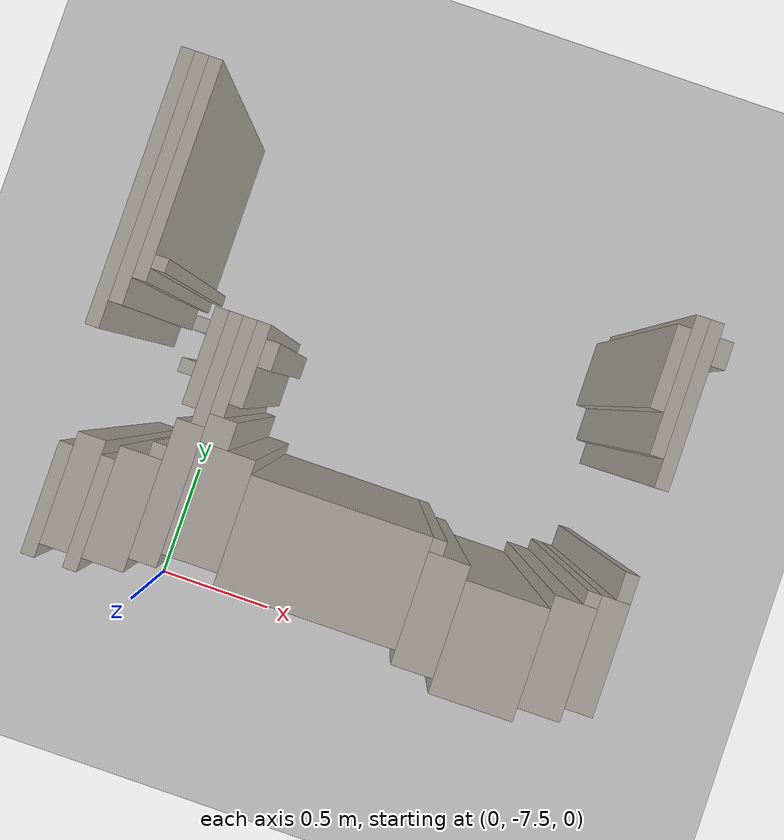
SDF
<sdf version="1.6">
 <world name="fr079_office">
  <include><uri>model://sun</uri></include>
  <include><uri>model://ground_plane</uri></include>
  <model name="fr079_office_walls">
   <static>true</static>
   <link name="w0014">
    <pose>-0.273 -7.106 0.500 0 0 0</pose>
    <collision name="c"><geometry><box><size>0.050 0.400 1.000</size></box></geometry></collision>
    <visual name="v">
     <geometry><box><size>0.050 0.400 1.000</size></box></geometry>
     <material><ambient>0.68 0.66 0.62 1</ambient><diffuse>0.68 0.66 0.62 1</diffuse></material>
    </visual>
   </link>
   <link name="w0015">
    <pose>-0.123 -7.106 0.500 0 0 0</pose>
    <collision name="c"><geometry><box><size>0.050 0.400 1.000</size></box></geometry></collision>
    <visual name="v">
     <geometry><box><size>0.050 0.400 1.000</size></box></geometry>
     <material><ambient>0.68 0.66 0.62 1</ambient><diffuse>0.68 0.66 0.62 1</diffuse></material>
    </visual>
   </link>
   <link name="w0016">
    <pose>1.302 -7.106 0.500 0 0 0</pose>
    <collision name="c"><geometry><box><size>0.300 0.400 1.000</size></box></geometry></collision>
    <visual name="v">
     <geometry><box><size>0.300 0.400 1.000</size></box></geometry>
     <material><ambient>0.68 0.66 0.62 1</ambient><diffuse>0.68 0.66 0.62 1</diffuse></material>
    </visual>
   </link>
   <link name="w0036">
    <pose>-0.198 -7.056 0.500 0 0 0</pose>
    <collision name="c"><geometry><box><size>0.100 0.400 1.000</size></box></geometry></collision>
    <visual name="v">
     <geometry><box><size>0.100 0.400 1.000</size></box></geometry>
     <material><ambient>0.68 0.66 0.62 1</ambient><diffuse>0.68 0.66 0.62 1</diffuse></material>
    </visual>
   </link>
   <link name="w0037">
    <pose>-0.023 -7.056 0.500 0 0 0</pose>
    <collision name="c"><geometry><box><size>0.150 0.400 1.000</size></box></geometry></collision>
    <visual name="v">
     <geometry><box><size>0.150 0.400 1.000</size></box></geometry>
     <material><ambient>0.68 0.66 0.62 1</ambient><diffuse>0.68 0.66 0.62 1</diffuse></material>
    </visual>
   </link>
   <link name="w0038">
    <pose>1.077 -7.056 0.500 0 0 0</pose>
    <collision name="c"><geometry><box><size>0.150 0.400 1.000</size></box></geometry></collision>
    <visual name="v">
     <geometry><box><size>0.150 0.400 1.000</size></box></geometry>
     <material><ambient>0.68 0.66 0.62 1</ambient><diffuse>0.68 0.66 0.62 1</diffuse></material>
    </visual>
   </link>
   <link name="w0039">
    <pose>1.527 -7.056 0.500 0 0 0</pose>
    <collision name="c"><geometry><box><size>0.150 0.400 1.000</size></box></geometry></collision>
    <visual name="v">
     <geometry><box><size>0.150 0.400 1.000</size></box></geometry>
     <material><ambient>0.68 0.66 0.62 1</ambient><diffuse>0.68 0.66 0.62 1</diffuse></material>
    </visual>
   </link>
   <link name="w0060">
    <pose>0.102 -6.956 0.500 0 0 0</pose>
    <collision name="c"><geometry><box><size>0.100 0.500 1.000</size></box></geometry></collision>
    <visual name="v">
     <geometry><box><size>0.100 0.500 1.000</size></box></geometry>
     <material><ambient>0.68 0.66 0.62 1</ambient><diffuse>0.68 0.66 0.62 1</diffuse></material>
    </visual>
   </link>
   <link name="w0061">
    <pose>0.677 -7.006 0.500 0 0 0</pose>
    <collision name="c"><geometry><box><size>0.650 0.400 1.000</size></box></geometry></collision>
    <visual name="v">
     <geometry><box><size>0.650 0.400 1.000</size></box></geometry>
     <material><ambient>0.68 0.66 0.62 1</ambient><diffuse>0.68 0.66 0.62 1</diffuse></material>
    </visual>
   </link>
   <link name="w0062">
    <pose>1.652 -7.006 0.500 0 0 0</pose>
    <collision name="c"><geometry><box><size>0.100 0.400 1.000</size></box></geometry></collision>
    <visual name="v">
     <geometry><box><size>0.100 0.400 1.000</size></box></geometry>
     <material><ambient>0.68 0.66 0.62 1</ambient><diffuse>0.68 0.66 0.62 1</diffuse></material>
    </visual>
   </link>
   <link name="w0086">
    <pose>0.252 -6.956 0.500 0 0 0</pose>
    <collision name="c"><geometry><box><size>0.200 0.400 1.000</size></box></geometry></collision>
    <visual name="v">
     <geometry><box><size>0.200 0.400 1.000</size></box></geometry>
     <material><ambient>0.68 0.66 0.62 1</ambient><diffuse>0.68 0.66 0.62 1</diffuse></material>
    </visual>
   </link>
   <link name="w0186">
    <pose>0.027 -6.831 0.500 0 0 0</pose>
    <collision name="c"><geometry><box><size>0.050 0.050 1.000</size></box></geometry></collision>
    <visual name="v">
     <geometry><box><size>0.050 0.050 1.000</size></box></geometry>
     <material><ambient>0.68 0.66 0.62 1</ambient><diffuse>0.68 0.66 0.62 1</diffuse></material>
    </visual>
   </link>
   <link name="w0187">
    <pose>1.027 -6.831 0.500 0 0 0</pose>
    <collision name="c"><geometry><box><size>0.050 0.050 1.000</size></box></geometry></collision>
    <visual name="v">
     <geometry><box><size>0.050 0.050 1.000</size></box></geometry>
     <material><ambient>0.68 0.66 0.62 1</ambient><diffuse>0.68 0.66 0.62 1</diffuse></material>
    </visual>
   </link>
   <link name="w0188">
    <pose>1.577 -6.831 0.500 0 0 0</pose>
    <collision name="c"><geometry><box><size>0.050 0.050 1.000</size></box></geometry></collision>
    <visual name="v">
     <geometry><box><size>0.050 0.050 1.000</size></box></geometry>
     <material><ambient>0.68 0.66 0.62 1</ambient><diffuse>0.68 0.66 0.62 1</diffuse></material>
    </visual>
   </link>
   <link name="w0202">
    <pose>1.677 -6.756 0.500 0 0 0</pose>
    <collision name="c"><geometry><box><size>0.050 0.100 1.000</size></box></geometry></collision>
    <visual name="v">
     <geometry><box><size>0.050 0.100 1.000</size></box></geometry>
     <material><ambient>0.68 0.66 0.62 1</ambient><diffuse>0.68 0.66 0.62 1</diffuse></material>
    </visual>
   </link>
   <link name="w0219">
    <pose>0.202 -6.706 0.500 0 0 0</pose>
    <collision name="c"><geometry><box><size>0.100 0.100 1.000</size></box></geometry></collision>
    <visual name="v">
     <geometry><box><size>0.100 0.100 1.000</size></box></geometry>
     <material><ambient>0.68 0.66 0.62 1</ambient><diffuse>0.68 0.66 0.62 1</diffuse></material>
    </visual>
   </link>
   <link name="w0237">
    <pose>0.127 -6.506 0.500 0 0 0</pose>
    <collision name="c"><geometry><box><size>0.050 0.400 1.000</size></box></geometry></collision>
    <visual name="v">
     <geometry><box><size>0.050 0.400 1.000</size></box></geometry>
     <material><ambient>0.68 0.66 0.62 1</ambient><diffuse>0.68 0.66 0.62 1</diffuse></material>
    </visual>
   </link>
   <link name="w0246">
    <pose>0.077 -6.481 0.500 0 0 0</pose>
    <collision name="c"><geometry><box><size>0.050 0.350 1.000</size></box></geometry></collision>
    <visual name="v">
     <geometry><box><size>0.050 0.350 1.000</size></box></geometry>
     <material><ambient>0.68 0.66 0.62 1</ambient><diffuse>0.68 0.66 0.62 1</diffuse></material>
    </visual>
   </link>
   <link name="w0247">
    <pose>0.177 -6.481 0.500 0 0 0</pose>
    <collision name="c"><geometry><box><size>0.050 0.350 1.000</size></box></geometry></collision>
    <visual name="v">
     <geometry><box><size>0.050 0.350 1.000</size></box></geometry>
     <material><ambient>0.68 0.66 0.62 1</ambient><diffuse>0.68 0.66 0.62 1</diffuse></material>
    </visual>
   </link>
   <link name="w0260">
    <pose>0.227 -6.456 0.500 0 0 0</pose>
    <collision name="c"><geometry><box><size>0.050 0.300 1.000</size></box></geometry></collision>
    <visual name="v">
     <geometry><box><size>0.050 0.300 1.000</size></box></geometry>
     <material><ambient>0.68 0.66 0.62 1</ambient><diffuse>0.68 0.66 0.62 1</diffuse></material>
    </visual>
   </link>
   <link name="w0273">
    <pose>0.027 -6.531 0.500 0 0 0</pose>
    <collision name="c"><geometry><box><size>0.050 0.050 1.000</size></box></geometry></collision>
    <visual name="v">
     <geometry><box><size>0.050 0.050 1.000</size></box></geometry>
     <material><ambient>0.68 0.66 0.62 1</ambient><diffuse>0.68 0.66 0.62 1</diffuse></material>
    </visual>
   </link>
   <link name="w0287">
    <pose>-0.323 -6.006 0.500 0 0 0</pose>
    <collision name="c"><geometry><box><size>0.050 1.000 1.000</size></box></geometry></collision>
    <visual name="v">
     <geometry><box><size>0.050 1.000 1.000</size></box></geometry>
     <material><ambient>0.68 0.66 0.62 1</ambient><diffuse>0.68 0.66 0.62 1</diffuse></material>
    </visual>
   </link>
   <link name="w0304">
    <pose>0.277 -6.406 0.500 0 0 0</pose>
    <collision name="c"><geometry><box><size>0.050 0.100 1.000</size></box></geometry></collision>
    <visual name="v">
     <geometry><box><size>0.050 0.100 1.000</size></box></geometry>
     <material><ambient>0.68 0.66 0.62 1</ambient><diffuse>0.68 0.66 0.62 1</diffuse></material>
    </visual>
   </link>
   <link name="w0322">
    <pose>-0.273 -5.956 0.500 0 0 0</pose>
    <collision name="c"><geometry><box><size>0.050 0.900 1.000</size></box></geometry></collision>
    <visual name="v">
     <geometry><box><size>0.050 0.900 1.000</size></box></geometry>
     <material><ambient>0.68 0.66 0.62 1</ambient><diffuse>0.68 0.66 0.62 1</diffuse></material>
    </visual>
   </link>
   <link name="w0323">
    <pose>0.027 -6.381 0.500 0 0 0</pose>
    <collision name="c"><geometry><box><size>0.050 0.050 1.000</size></box></geometry></collision>
    <visual name="v">
     <geometry><box><size>0.050 0.050 1.000</size></box></geometry>
     <material><ambient>0.68 0.66 0.62 1</ambient><diffuse>0.68 0.66 0.62 1</diffuse></material>
    </visual>
   </link>
   <link name="w0324">
    <pose>1.677 -6.106 0.500 0 0 0</pose>
    <collision name="c"><geometry><box><size>0.050 0.600 1.000</size></box></geometry></collision>
    <visual name="v">
     <geometry><box><size>0.050 0.600 1.000</size></box></geometry>
     <material><ambient>0.68 0.66 0.62 1</ambient><diffuse>0.68 0.66 0.62 1</diffuse></material>
    </visual>
   </link>
   <link name="w0354">
    <pose>-0.223 -5.906 0.500 0 0 0</pose>
    <collision name="c"><geometry><box><size>0.050 0.800 1.000</size></box></geometry></collision>
    <visual name="v">
     <geometry><box><size>0.050 0.800 1.000</size></box></geometry>
     <material><ambient>0.68 0.66 0.62 1</ambient><diffuse>0.68 0.66 0.62 1</diffuse></material>
    </visual>
   </link>
   <link name="w0355">
    <pose>1.627 -6.056 0.500 0 0 0</pose>
    <collision name="c"><geometry><box><size>0.050 0.500 1.000</size></box></geometry></collision>
    <visual name="v">
     <geometry><box><size>0.050 0.500 1.000</size></box></geometry>
     <material><ambient>0.68 0.66 0.62 1</ambient><diffuse>0.68 0.66 0.62 1</diffuse></material>
    </visual>
   </link>
   <link name="w0365">
    <pose>-0.173 -6.231 0.500 0 0 0</pose>
    <collision name="c"><geometry><box><size>0.050 0.050 1.000</size></box></geometry></collision>
    <visual name="v">
     <geometry><box><size>0.050 0.050 1.000</size></box></geometry>
     <material><ambient>0.68 0.66 0.62 1</ambient><diffuse>0.68 0.66 0.62 1</diffuse></material>
    </visual>
   </link>
   <link name="w0386">
    <pose>1.577 -6.006 0.500 0 0 0</pose>
    <collision name="c"><geometry><box><size>0.050 0.300 1.000</size></box></geometry></collision>
    <visual name="v">
     <geometry><box><size>0.050 0.300 1.000</size></box></geometry>
     <material><ambient>0.68 0.66 0.62 1</ambient><diffuse>0.68 0.66 0.62 1</diffuse></material>
    </visual>
   </link>
   <link name="w0438">
    <pose>1.727 -5.906 0.500 0 0 0</pose>
    <collision name="c"><geometry><box><size>0.050 0.100 1.000</size></box></geometry></collision>
    <visual name="v">
     <geometry><box><size>0.050 0.100 1.000</size></box></geometry>
     <material><ambient>0.68 0.66 0.62 1</ambient><diffuse>0.68 0.66 0.62 1</diffuse></material>
    </visual>
   </link>
  </model>
 </world>
</sdf>
